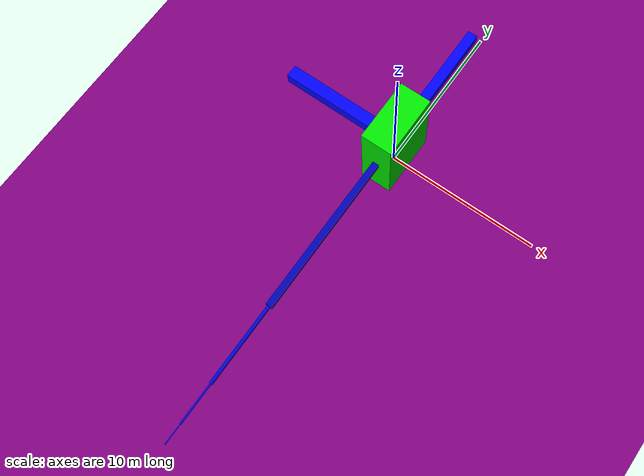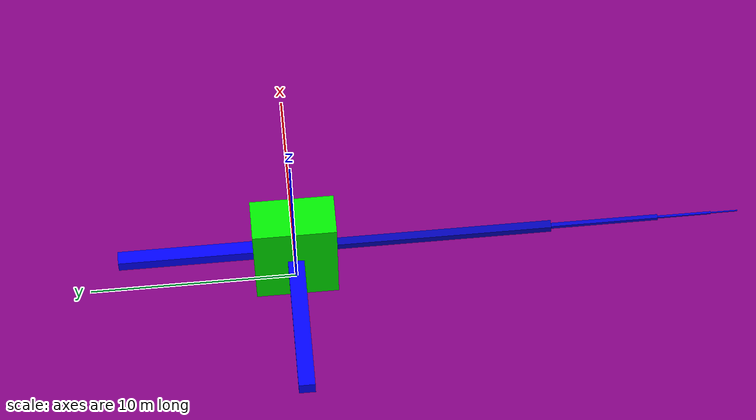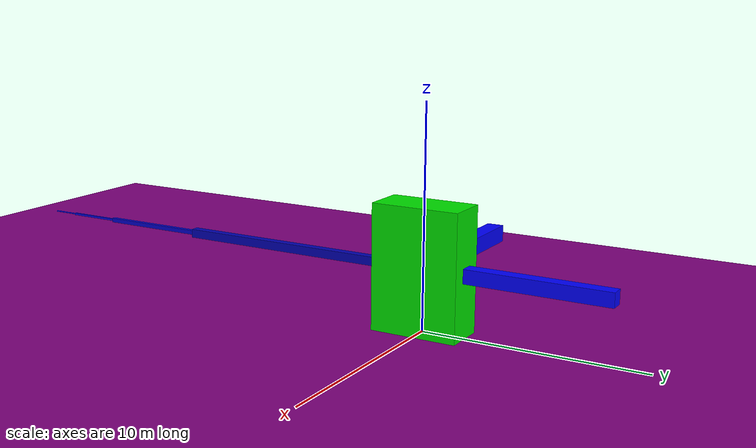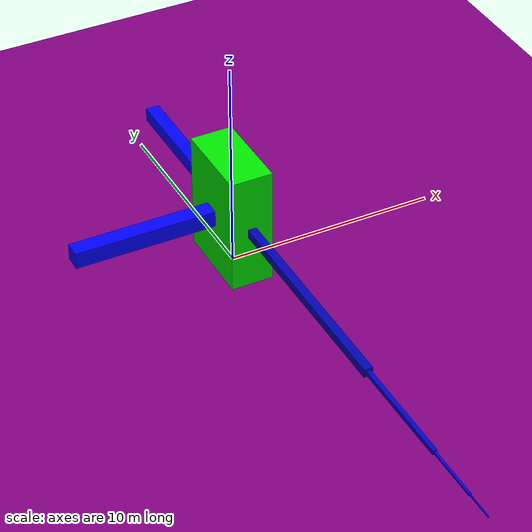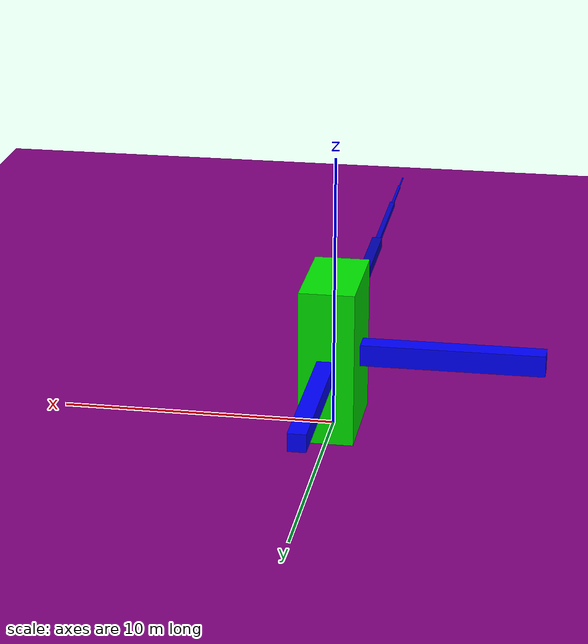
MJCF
<mujoco model="unnamed_model">
  <option timestep="0.01" integrator="RK4">
    <flag energy="enable" sensornoise="enable"/>
  </option>
  <default>
    <default class="/"/>
  </default>
  <worldbody>
    <light name="world_light" class="/" pos="0 0 10" dir="0 0 -1" diffuse="0.5 0.5 0.5"/>
    <geom name="ground_plane" class="/" type="plane" size="0 0 1" rgba="0.5 0 0.5 1"/>
    <body name="core_body" pos="0 0 2.8267341911491668">
      <geom name="core_geom" class="/" type="box" size="1 1.9936767153702086 2.8267341911491668" rgba="0 0.90000000000000002 0 1"/>
      <joint name="first" class="/" type="free"/>
      <body name="front_limb_1" pos="0 -7.1679273635493495 0">
        <joint name="front_shoulder_1" class="/" type="ball" pos="0 5.1742506481791413 0"/>
        <geom name="front_arm_1" class="/" type="box" size="0.20000000000000001 5.1742506481791413 0.20000000000000001" rgba="0 0 0.69999999999999996 1" mass="1"/>
        <body name="front_limb_2" pos="0 -7.7613759722687119 0">
          <joint name="front_shoulder_2" class="/" type="ball" pos="0 2.5871253240895706 0"/>
          <geom name="front_arm_2" class="/" type="box" size="0.10000000000000001 2.5871253240895706 0.10000000000000001" rgba="0 0 0.80000000000000004 1" mass="1"/>
          <body name="front_limb_3" pos="0 -3.8806879861343559 0">
            <joint name="front_shoulder_3" class="/" type="ball" pos="0 1.2935626620447853 0"/>
            <geom name="front_arm_3" class="/" type="box" size="0.050000000000000003 1.2935626620447853 0.050000000000000003" rgba="0 0 0.90000000000000002 1" mass="1"/>
            <body name="front_limb_4" pos="0 -1.940343993067178 0">
              <joint name="front_shoulder_4" class="/" type="ball" pos="0 0.64678133102239266 0"/>
              <geom name="front_arm_4" class="/" type="box" size="0.025000000000000001 0.64678133102239266 0.025000000000000001" rgba="0 0 1 1" mass="1"/>
            </body>
          </body>
        </body>
      </body>
      <body name="left_limb_5" pos="-4.3085720670714558 0 0">
        <joint name="left_shoulder_5" class="/" type="ball" pos="3.3085720670714558 0 0"/>
        <geom name="left_arm_5" class="/" type="box" size="3.3085720670714558 0.39116770043783072 0.39116770043783072" rgba="0 0 1 1" mass="1"/>
      </body>
      <body name="back_limb_6" pos="0 5.2207382355153813 0">
        <joint name="back_shoulder_6" class="/" type="ball" pos="0 -3.2270615201451727 0"/>
        <geom name="back_arm_6" class="/" type="box" size="0.32253289967636206 3.2270615201451727 0.32253289967636206" rgba="0 0 1 1" mass="1"/>
      </body>
    </body>
  </worldbody>
  <actuator>
    <position name="frontxy_3" class="/" group="0" gear="0 0 1" joint="front_shoulder_1" kp="5"/>
    <position name="frontxz_3" class="/" group="0" gear="0 1 0" joint="front_shoulder_1" kp="5"/>
    <position name="frontyz_3" class="/" group="0" gear="1 0 0" joint="front_shoulder_1" kp="5"/>
    <position name="frontxy_2" class="/" group="0" gear="0 0 1" joint="front_shoulder_2" kp="5"/>
    <position name="frontxz_2" class="/" group="0" gear="0 1 0" joint="front_shoulder_2" kp="5"/>
    <position name="frontyz_2" class="/" group="0" gear="1 0 0" joint="front_shoulder_2" kp="5"/>
    <position name="frontxy_1" class="/" group="0" gear="0 0 1" joint="front_shoulder_3" kp="5"/>
    <position name="frontxz_1" class="/" group="0" gear="0 1 0" joint="front_shoulder_3" kp="5"/>
    <position name="frontyz_1" class="/" group="0" gear="1 0 0" joint="front_shoulder_3" kp="5"/>
    <position name="frontxy_0" class="/" group="0" gear="0 0 1" joint="front_shoulder_4" kp="5"/>
    <position name="frontxz_0" class="/" group="0" gear="0 1 0" joint="front_shoulder_4" kp="5"/>
    <position name="frontyz_0" class="/" group="0" gear="1 0 0" joint="front_shoulder_4" kp="5"/>
    <position name="leftxy_0" class="/" group="3" gear="0 0 1" joint="left_shoulder_5" kp="5"/>
    <position name="leftxz_0" class="/" group="3" gear="0 1 0" joint="left_shoulder_5" kp="5"/>
    <position name="leftyz_0" class="/" group="3" gear="1 0 0" joint="left_shoulder_5" kp="5"/>
    <position name="backxy_0" class="/" group="2" gear="0 0 1" joint="back_shoulder_6" kp="5"/>
    <position name="backxz_0" class="/" group="2" gear="0 1 0" joint="back_shoulder_6" kp="5"/>
    <position name="backyz_0" class="/" group="2" gear="1 0 0" joint="back_shoulder_6" kp="5"/>
  </actuator>
</mujoco>
